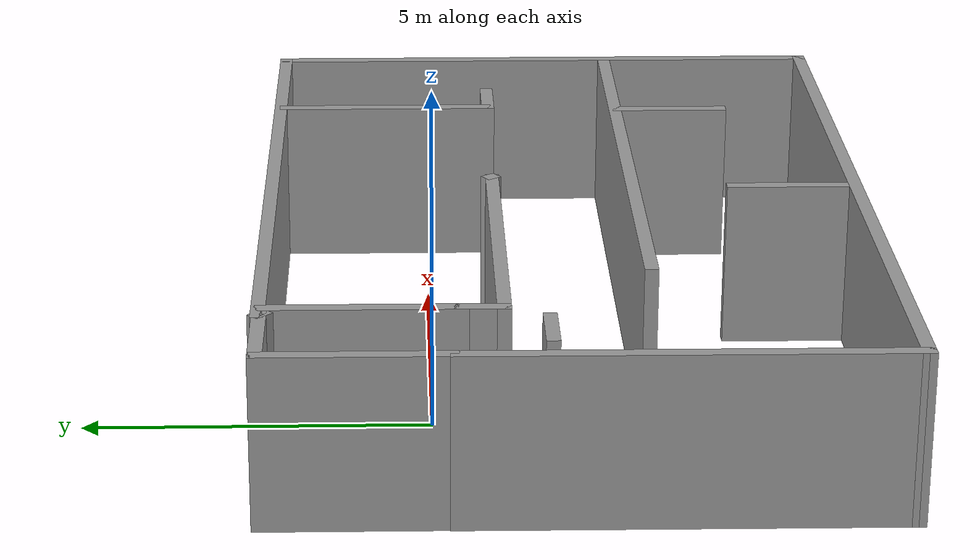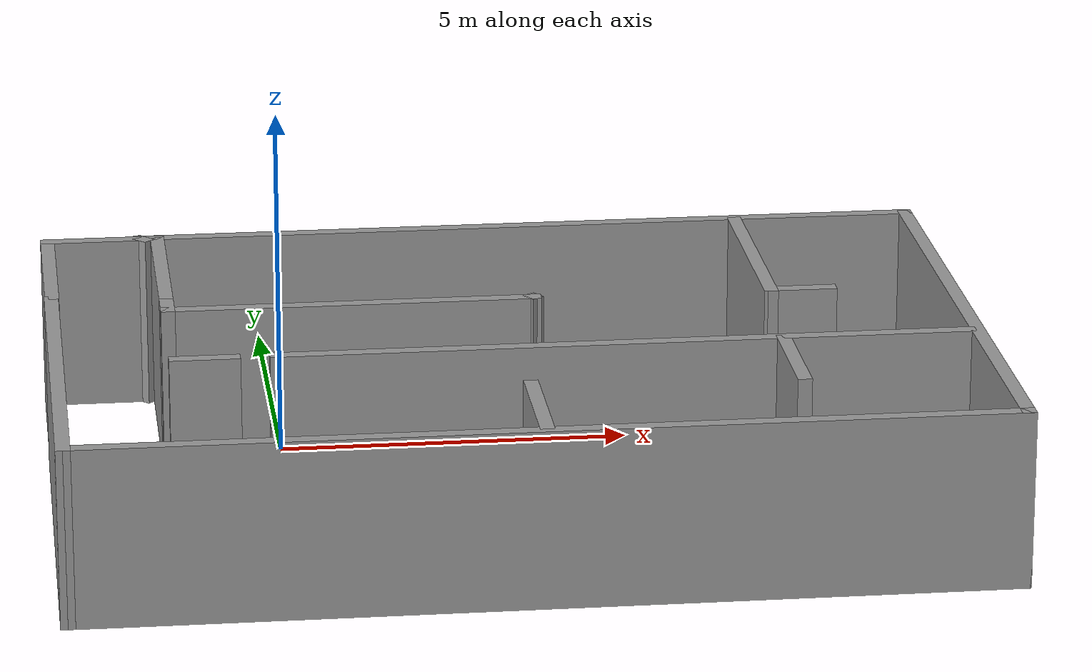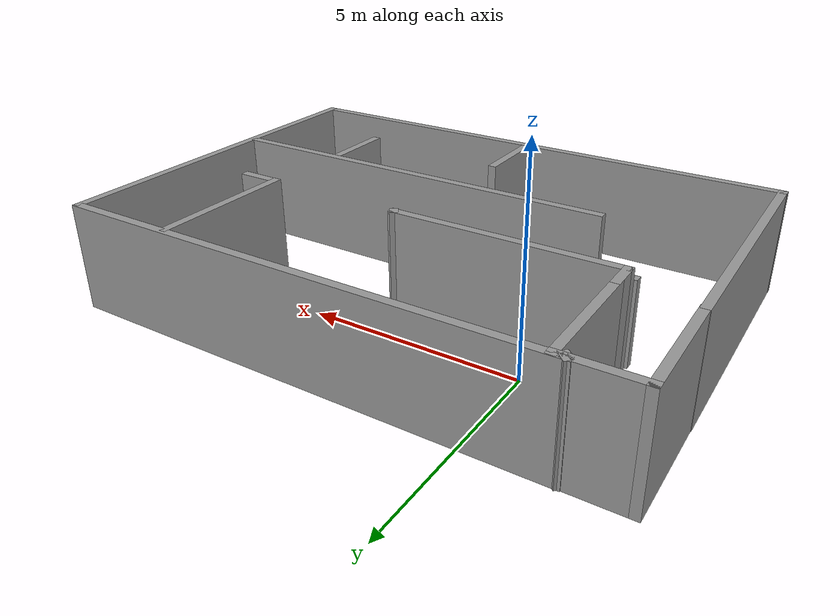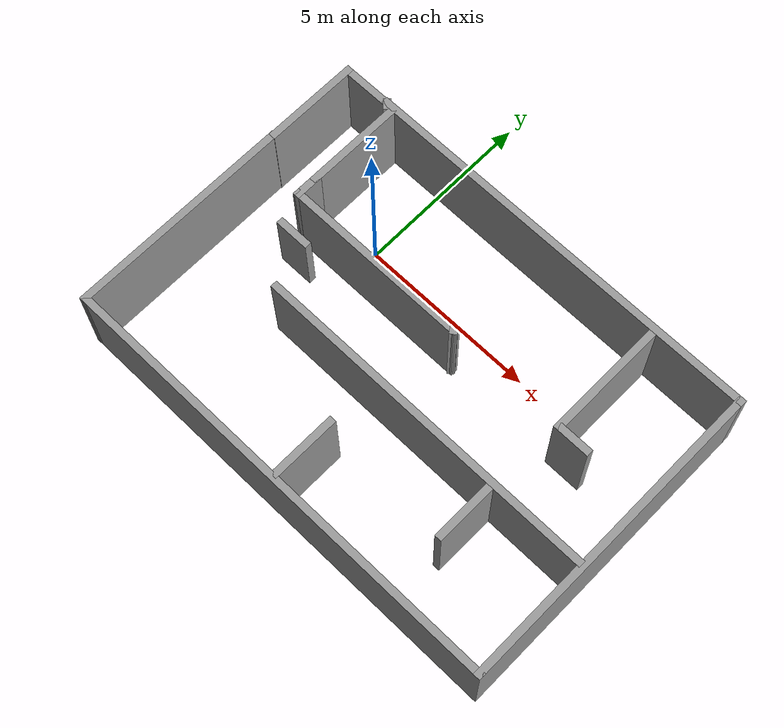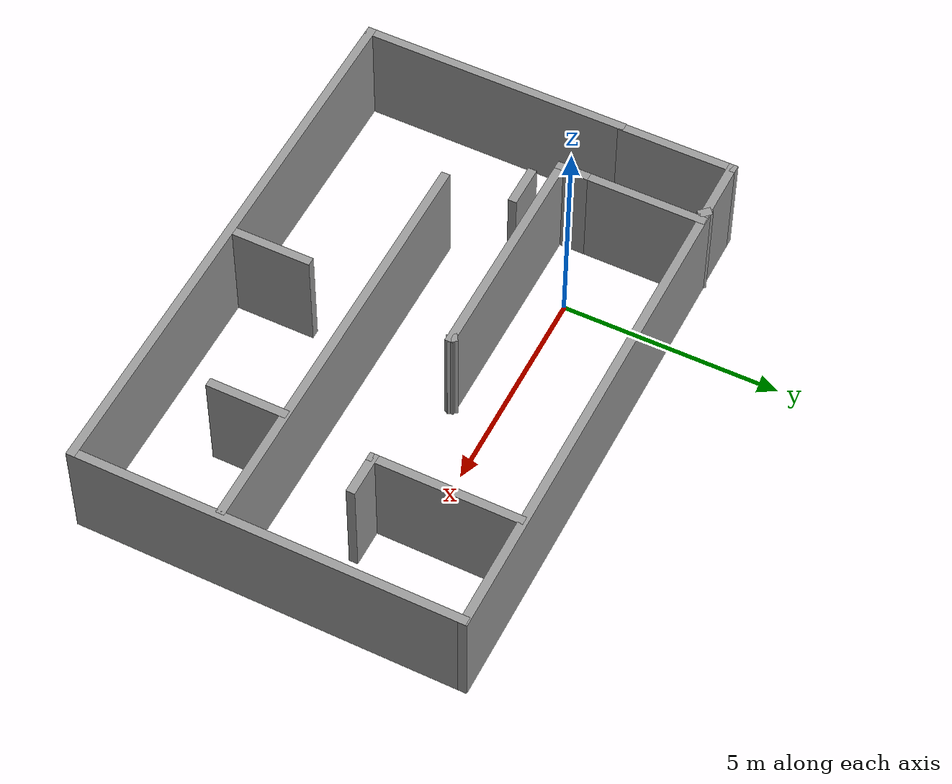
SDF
<?xml version='1.0'?>
<sdf version='1.4'>
  <model name='map1'>
    <link name='Door_0'>
      <collision name='Door_0_Collision'>
        <geometry>
          <box>
            <size>1 0.2 2</size>
          </box>
        </geometry>
        <pose>0 0 1 0 -0 0</pose>
      </collision>
      <visual name='Door_0_Visual'>
        <pose>0 0 1 0 -0 0</pose>
        <geometry>
          <box>
            <size>1 0.2 2</size>
          </box>
        </geometry>
        <material>
          <script>
            <uri>file://media/materials/scripts/gazebo.material</uri>
            <name>Gazebo/Grey</name>
          </script>
        </material>
      </visual>
      <velocity_decay>
        <linear>0</linear>
        <angular>0</angular>
      </velocity_decay>
      <pose>-1.15 -1.61739 0 0 -0 0</pose>
    </link>
    <link name='Wall_10'>
      <collision name='Wall_10_Collision'>
        <geometry>
          <box>
            <size>2.74783 0.2 2.5</size>
          </box>
        </geometry>
        <pose>0 0 1.25 0 -0 0</pose>
      </collision>
      <visual name='Wall_10_Visual'>
        <pose>0 0 1.25 0 -0 0</pose>
        <geometry>
          <box>
            <size>2.74783 0.2 2.5</size>
          </box>
        </geometry>
        <material>
          <script>
            <uri>file://media/materials/scripts/gazebo.material</uri>
            <name>Gazebo/Grey</name>
          </script>
        </material>
      </visual>
      <velocity_decay>
        <linear>0</linear>
        <angular>0</angular>
      </velocity_decay>
      <pose>-3.21956 1.06522 0 0 -0 1.5708</pose>
    </link>
    <link name='Wall_11'>
      <collision name='Wall_11_Collision'>
        <geometry>
          <box>
            <size>1.8 0.2 2.5</size>
          </box>
        </geometry>
        <pose>0 0 1.25 0 -0 0</pose>
      </collision>
      <visual name='Wall_11_Visual'>
        <pose>0 0 1.25 0 -0 0</pose>
        <geometry>
          <box>
            <size>1.8 0.2 2.5</size>
          </box>
        </geometry>
        <material>
          <script>
            <uri>file://media/materials/scripts/gazebo.material</uri>
            <name>Gazebo/Grey</name>
          </script>
        </material>
      </visual>
      <velocity_decay>
        <linear>0</linear>
        <angular>0</angular>
      </velocity_decay>
      <pose>-2.41956 2.33913 0 0 -0 0</pose>
    </link>
    <link name='Wall_12'>
      <collision name='Wall_12_Collision'>
        <geometry>
          <box>
            <size>2.91304 0.2 2.5</size>
          </box>
        </geometry>
        <pose>0 0 1.25 0 -0 0</pose>
      </collision>
      <visual name='Wall_12_Visual'>
        <pose>0 0 1.25 0 -0 0</pose>
        <geometry>
          <box>
            <size>2.91304 0.2 2.5</size>
          </box>
        </geometry>
        <material>
          <script>
            <uri>file://media/materials/scripts/gazebo.material</uri>
            <name>Gazebo/Grey</name>
          </script>
        </material>
      </visual>
      <velocity_decay>
        <linear>0</linear>
        <angular>0</angular>
      </velocity_decay>
      <pose>-1.61956 0.982609 0 0 0 -1.5708</pose>
    </link>
    <link name='Wall_13'>
      <collision name='Wall_13_Collision'>
        <geometry>
          <box>
            <size>0.773913 0.2 2.5</size>
          </box>
        </geometry>
        <pose>0 0 1.25 0 -0 0</pose>
      </collision>
      <visual name='Wall_13_Visual'>
        <pose>0 0 1.25 0 -0 0</pose>
        <geometry>
          <box>
            <size>0.773913 0.2 2.5</size>
          </box>
        </geometry>
        <material>
          <script>
            <uri>file://media/materials/scripts/gazebo.material</uri>
            <name>Gazebo/Grey</name>
          </script>
        </material>
      </visual>
      <velocity_decay>
        <linear>0</linear>
        <angular>0</angular>
      </velocity_decay>
      <pose>-1.61956 -0.66087 0 0 0 -1.5708</pose>
    </link>
    <link name='Wall_14'>
      <collision name='Wall_14_Collision'>
        <geometry>
          <box>
            <size>5.37391 0.2 2.5</size>
          </box>
        </geometry>
        <pose>0 0 1.25 0 -0 0</pose>
      </collision>
      <visual name='Wall_14_Visual'>
        <pose>0 0 1.25 0 -0 0</pose>
        <geometry>
          <box>
            <size>5.37391 0.2 2.5</size>
          </box>
        </geometry>
        <material>
          <script>
            <uri>file://media/materials/scripts/gazebo.material</uri>
            <name>Gazebo/Grey</name>
          </script>
        </material>
      </visual>
      <velocity_decay>
        <linear>0</linear>
        <angular>0</angular>
      </velocity_decay>
      <pose>0.967391 -0.947826 0 0 -0 0</pose>
    </link>
    <link name='Wall_15'>
      <collision name='Wall_15_Collision'>
        <geometry>
          <box>
            <size>0.231353 0.2 2.5</size>
          </box>
        </geometry>
        <pose>0 0 1.25 0 -0 0</pose>
      </collision>
      <visual name='Wall_15_Visual'>
        <pose>0 0 1.25 0 -0 0</pose>
        <geometry>
          <box>
            <size>0.231353 0.2 2.5</size>
          </box>
        </geometry>
        <material>
          <script>
            <uri>file://media/materials/scripts/gazebo.material</uri>
            <name>Gazebo/Grey</name>
          </script>
        </material>
      </visual>
      <velocity_decay>
        <linear>0</linear>
        <angular>0</angular>
      </velocity_decay>
      <pose>3.54565 -0.934783 0 0 -0 2.1588</pose>
    </link>
    <link name='Wall_19'>
      <collision name='Wall_19_Collision'>
        <geometry>
          <box>
            <size>3.46956 0.2 2.5</size>
          </box>
        </geometry>
        <pose>0 0 1.25 0 -0 0</pose>
      </collision>
      <visual name='Wall_19_Visual'>
        <pose>0 0 1.25 0 -0 0</pose>
        <geometry>
          <box>
            <size>3.46956 0.2 2.5</size>
          </box>
        </geometry>
        <material>
          <script>
            <uri>file://media/materials/scripts/gazebo.material</uri>
            <name>Gazebo/Grey</name>
          </script>
        </material>
      </visual>
      <velocity_decay>
        <linear>0</linear>
        <angular>0</angular>
      </velocity_decay>
      <pose>6.92826 0.643478 0 0 0 -1.5708</pose>
    </link>
    <link name='Wall_2'>
      <collision name='Wall_2_Collision'>
        <geometry>
          <box>
            <size>6.30001 0.2 2.5</size>
          </box>
        </geometry>
        <pose>0 0 1.25 0 -0 0</pose>
      </collision>
      <visual name='Wall_2_Visual'>
        <pose>0 0 1.25 0 -0 0</pose>
        <geometry>
          <box>
            <size>6.30001 0.2 2.5</size>
          </box>
        </geometry>
        <material>
          <script>
            <uri>file://media/materials/scripts/gazebo.material</uri>
            <name>Gazebo/Grey</name>
          </script>
        </material>
      </visual>
      <velocity_decay>
        <linear>0</linear>
        <angular>0</angular>
      </velocity_decay>
      <pose>-3.235 -3.34 0 0 0 -1.57244</pose>
    </link>
    <link name='Wall_20'>
      <collision name='Wall_20_Collision'>
        <geometry>
          <box>
            <size>1.04348 0.2 2.5</size>
          </box>
        </geometry>
        <pose>0 0 1.25 0 -0 0</pose>
      </collision>
      <visual name='Wall_20_Visual'>
        <pose>0 0 1.25 0 -0 0</pose>
        <geometry>
          <box>
            <size>1.04348 0.2 2.5</size>
          </box>
        </geometry>
        <material>
          <script>
            <uri>file://media/materials/scripts/gazebo.material</uri>
            <name>Gazebo/Grey</name>
          </script>
        </material>
      </visual>
      <velocity_decay>
        <linear>0</linear>
        <angular>0</angular>
      </velocity_decay>
      <pose>7.35 -0.991304 0 0 -0 0</pose>
    </link>
    <link name='Wall_22'>
      <collision name='Wall_22_Collision'>
        <geometry>
          <box>
            <size>9.8 0.2 2.5</size>
          </box>
        </geometry>
        <pose>0 0 1.25 0 -0 0</pose>
      </collision>
      <visual name='Wall_22_Visual'>
        <pose>0 0 1.25 0 -0 0</pose>
        <geometry>
          <box>
            <size>9.8 0.2 2.5</size>
          </box>
        </geometry>
        <material>
          <script>
            <uri>file://media/materials/scripts/gazebo.material</uri>
            <name>Gazebo/Grey</name>
          </script>
        </material>
      </visual>
      <velocity_decay>
        <linear>0</linear>
        <angular>0</angular>
      </velocity_decay>
      <pose>4.57174 -3.04348 0 0 -0 3.14159</pose>
    </link>
    <link name='Wall_24'>
      <collision name='Wall_24_Collision'>
        <geometry>
          <box>
            <size>1.92174 0.2 2.5</size>
          </box>
        </geometry>
        <pose>0 0 1.25 0 -0 0</pose>
      </collision>
      <visual name='Wall_24_Visual'>
        <pose>0 0 1.25 0 -0 0</pose>
        <geometry>
          <box>
            <size>1.92174 0.2 2.5</size>
          </box>
        </geometry>
        <material>
          <script>
            <uri>file://media/materials/scripts/gazebo.material</uri>
            <name>Gazebo/Grey</name>
          </script>
        </material>
      </visual>
      <velocity_decay>
        <linear>0</linear>
        <angular>0</angular>
      </velocity_decay>
      <pose>3.09348 -5.41739 0 0 -0 1.5708</pose>
    </link>
    <link name='Wall_26'>
      <collision name='Wall_26_Collision'>
        <geometry>
          <box>
            <size>1.83478 0.2 2.5</size>
          </box>
        </geometry>
        <pose>0 0 1.25 0 -0 0</pose>
      </collision>
      <visual name='Wall_26_Visual'>
        <pose>0 0 1.25 0 -0 0</pose>
        <geometry>
          <box>
            <size>1.83478 0.2 2.5</size>
          </box>
        </geometry>
        <material>
          <script>
            <uri>file://media/materials/scripts/gazebo.material</uri>
            <name>Gazebo/Grey</name>
          </script>
        </material>
      </visual>
      <velocity_decay>
        <linear>0</linear>
        <angular>0</angular>
      </velocity_decay>
      <pose>6.77174 -3.92174 0 0 0 -1.5708</pose>
    </link>
    <link name='Wall_3'>
      <collision name='Wall_3_Collision'>
        <geometry>
          <box>
            <size>12.94 0.2 2.5</size>
          </box>
        </geometry>
        <pose>0 0 1.25 0 -0 0</pose>
      </collision>
      <visual name='Wall_3_Visual'>
        <pose>0 0 1.25 0 -0 0</pose>
        <geometry>
          <box>
            <size>12.94 0.2 2.5</size>
          </box>
        </geometry>
        <material>
          <script>
            <uri>file://media/materials/scripts/gazebo.material</uri>
            <name>Gazebo/Grey</name>
          </script>
        </material>
      </visual>
      <velocity_decay>
        <linear>0</linear>
        <angular>0</angular>
      </velocity_decay>
      <pose>3.13 -6.39 0 0 -0 0</pose>
    </link>
    <link name='Wall_4'>
      <collision name='Wall_4_Collision'>
        <geometry>
          <box>
            <size>8.91551 0.2 2.5</size>
          </box>
        </geometry>
        <pose>0 0 1.25 0 -0 0</pose>
      </collision>
      <visual name='Wall_4_Visual'>
        <pose>0 0 1.25 0 -0 0</pose>
        <geometry>
          <box>
            <size>8.91551 0.2 2.5</size>
          </box>
        </geometry>
        <material>
          <script>
            <uri>file://media/materials/scripts/gazebo.material</uri>
            <name>Gazebo/Grey</name>
          </script>
        </material>
      </visual>
      <velocity_decay>
        <linear>0</linear>
        <angular>0</angular>
      </velocity_decay>
      <pose>9.5 -2.03224 0 0 -0 1.5708</pose>
    </link>
    <link name='Wall_7'>
      <collision name='Wall_7_Collision'>
        <geometry>
          <box>
            <size>11.57 0.2 2.5</size>
          </box>
        </geometry>
        <pose>0 0 1.25 0 -0 0</pose>
      </collision>
      <visual name='Wall_7_Visual'>
        <pose>0 0 1.25 0 -0 0</pose>
        <geometry>
          <box>
            <size>11.57 0.2 2.5</size>
          </box>
        </geometry>
        <material>
          <script>
            <uri>file://media/materials/scripts/gazebo.material</uri>
            <name>Gazebo/Grey</name>
          </script>
        </material>
      </visual>
      <velocity_decay>
        <linear>0</linear>
        <angular>0</angular>
      </velocity_decay>
      <pose>3.815 2.36 0 0 -0 3.14159</pose>
    </link>
    <link name='Wall_8'>
      <collision name='Wall_8_Collision'>
        <geometry>
          <box>
            <size>0.298995 0.2 2.5</size>
          </box>
        </geometry>
        <pose>0 0 1.25 0 -0 0</pose>
      </collision>
      <visual name='Wall_8_Visual'>
        <pose>0 0 1.25 0 -0 0</pose>
        <geometry>
          <box>
            <size>0.298995 0.2 2.5</size>
          </box>
        </geometry>
        <material>
          <script>
            <uri>file://media/materials/scripts/gazebo.material</uri>
            <name>Gazebo/Grey</name>
          </script>
        </material>
      </visual>
      <velocity_decay>
        <linear>0</linear>
        <angular>0</angular>
      </velocity_decay>
      <pose>-1.835 2.325 0 0 0 -0.785398</pose>
    </link>
    <static>1</static>
  </model>
</sdf>
